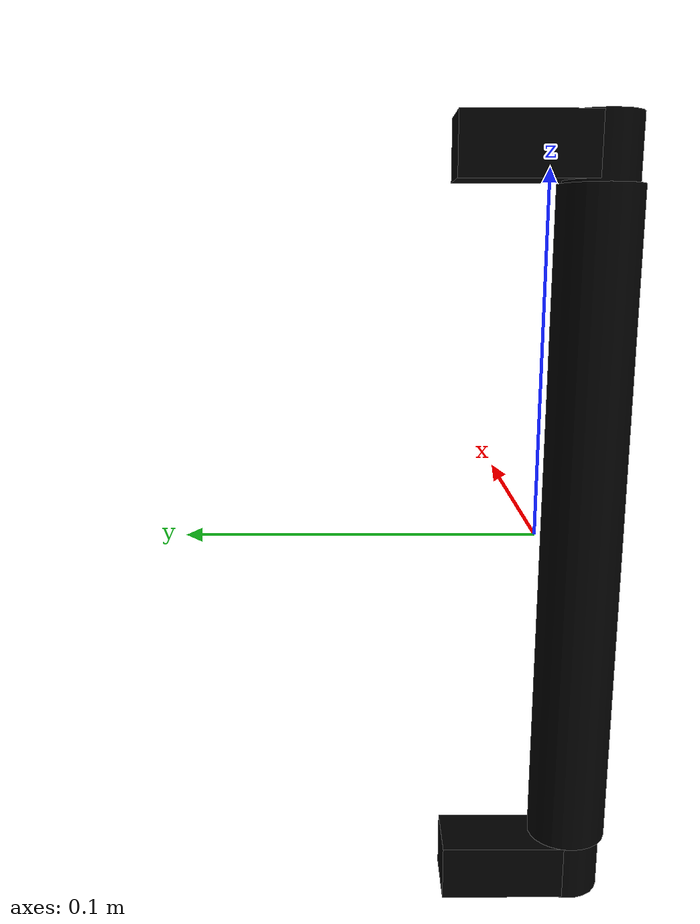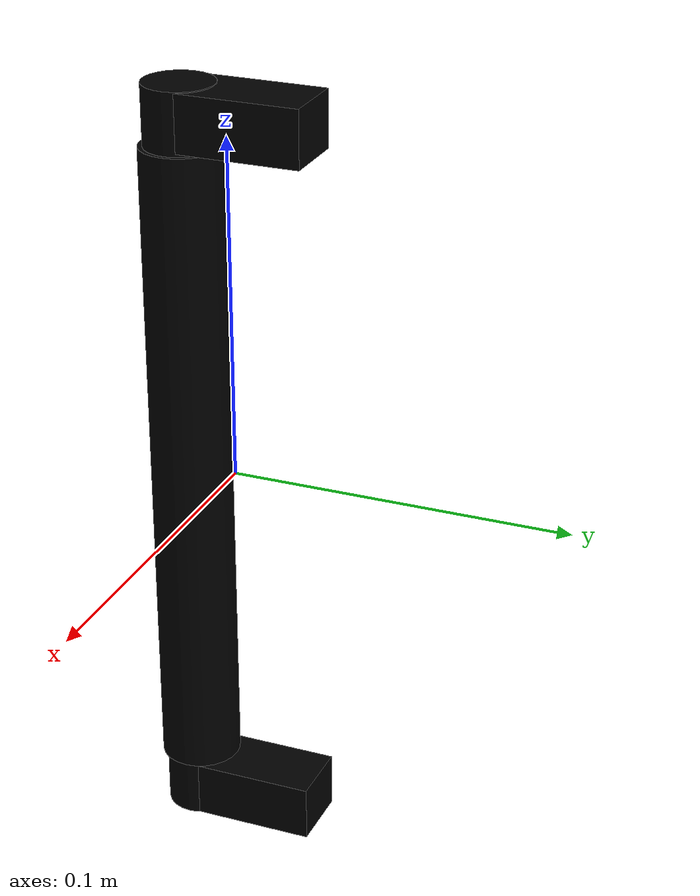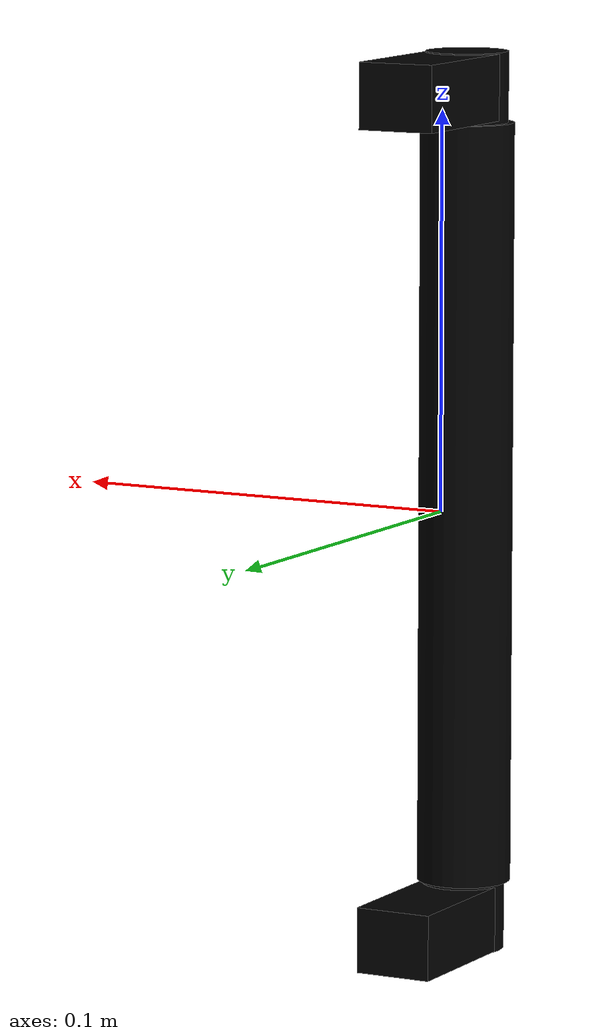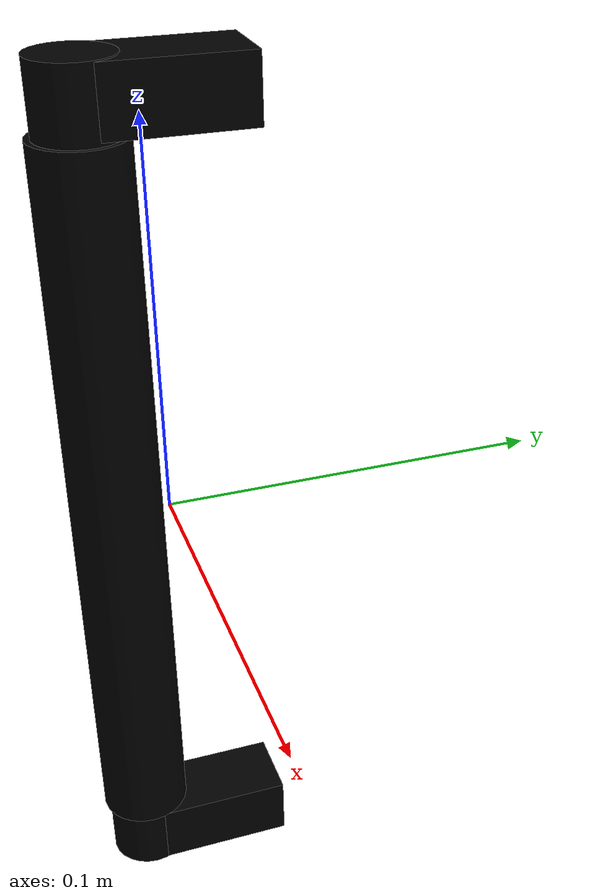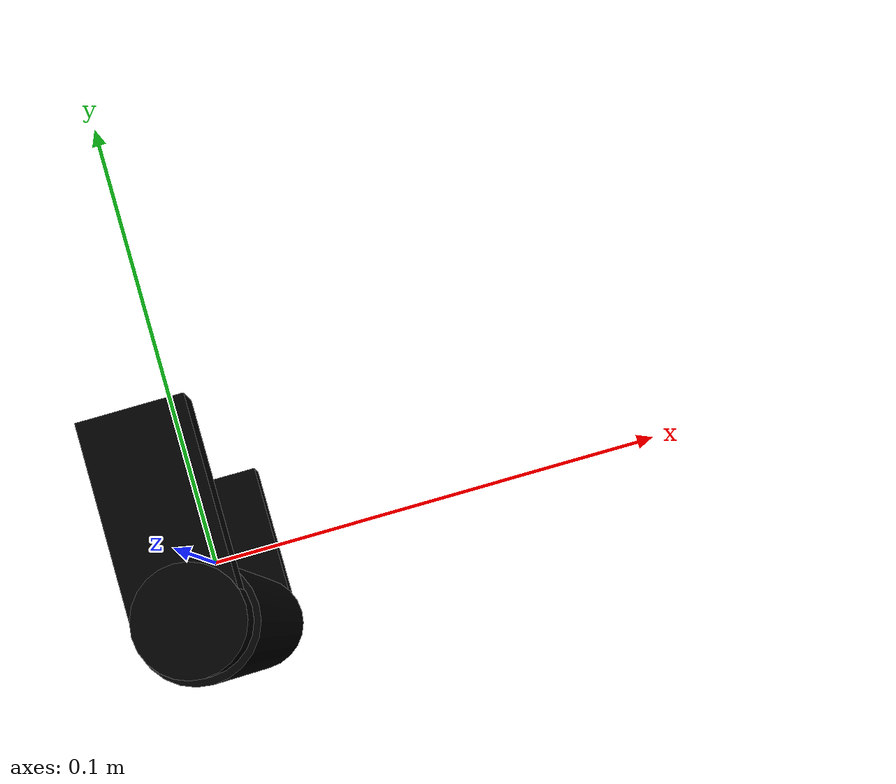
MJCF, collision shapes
<?xml version="1.0" ?>
<mujoco model="model">
    <compiler angle="radian"/>
    <asset>
        <mesh file="visuals/CabinetHandle049.obj" name="mesh"/>
        <texture file="visuals/T_BC001.png" name="tex" type="2d"/>
        <material name="mat" rgba="1 1 1 1.0" texture="tex" shininess="8" specular="8"/>
    </asset>
    <default>
        <default class="visual">
            <geom conaffinity="0" contype="0" group="1" type="mesh"/>
        </default>
        <default class="collision">
            <geom group="0" rgba="0 0 0 0"/>
        </default>
        <default class="spawn">
            <geom group="0" rgba="0 0 0 0" contype="0" conaffinity="0"/>
            <site group="0" rgba="0 0 0 0"/>
        </default>
    </default>
    <worldbody>
        <body>
            <body name="object">
                <geom mesh="mesh" type="mesh" solimp="0.998 0.998 0.001" solref="0.001 1" density="100" friction="0.95 0.3 0.1" class="visual" material="mat"/>
                <geom class="collision" type="box" pos="0.0 0.005410264246165752 0.10496063530445099" size="0.009910544380545616 0.01975945569574833 0.008260266855359077" quat="1.0 0.0 0.0 0.0" name="handle_connector"/>
                <geom class="collision" type="box" pos="0.0 0.005410264246165752 -0.10494969040155411" size="0.009910546243190765 0.01975945569574833 0.008260267786681652" quat="1.0 0.0 0.0 0.0"/>
                <geom class="collision" type="cylinder" pos="0.0 -0.013638203032314777 0.0" size="0.01173787098377943 0.09582595527172089" quat="1.0 0.0 0.0 0.0"/>
                <geom class="collision" type="cylinder" pos="0.00013369978114496917 -0.013571713119745255 0.10467750579118729" size="0.010331730358302593 0.008857280015945435" quat="1.0 0.0 0.0 0.0"/>
                <geom class="collision" type="cylinder" pos="0.00016043965297285467 -0.013571713119745255 -0.10446971654891968" size="0.010331730358302593 0.008857280015945435" quat="1.0 0.0 0.0 0.0"/>
            </body>
        </body>
    </worldbody>
    <actuator/>
</mujoco>
